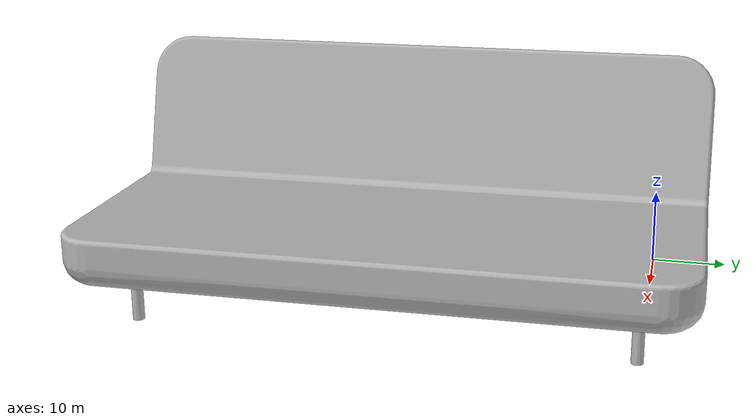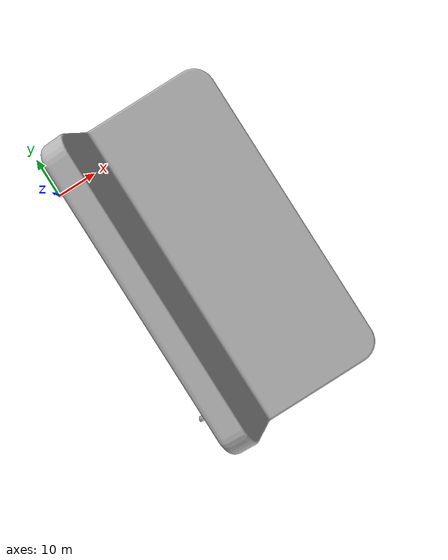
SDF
<?xml version="1.0" ?>
<sdf version="1.5">
  <model name="lack_coffee_table">
    <static>true</static>
    <link name="link">
      <collision name="table">
        <pose>0 0 0.02 0 0 0</pose>
        <geometry>
          <box>
            <size>1955.8 1130.3 796.5</size>
          </box>
        </geometry>
      </collision>

      <visual name="visual">
        <geometry>
          <mesh>
            <uri>model://nyhman_futon/meshes/nyhamn_futon.dae</uri>
          </mesh>
        </geometry>
      </visual>
    </link>
  </model>
</sdf>
